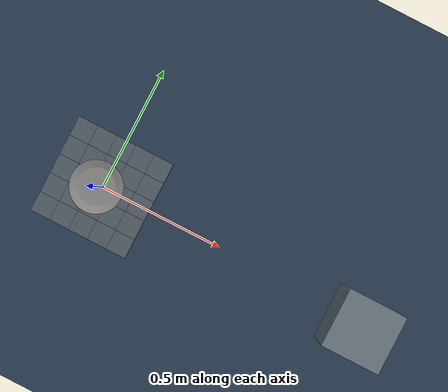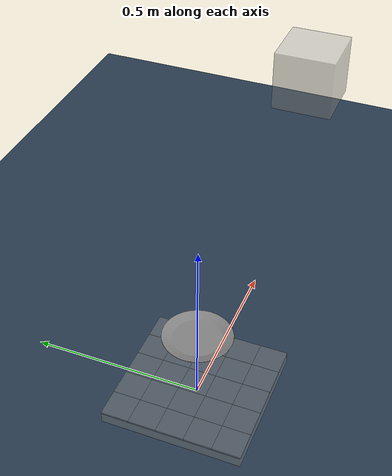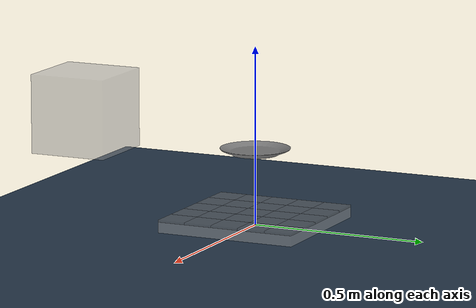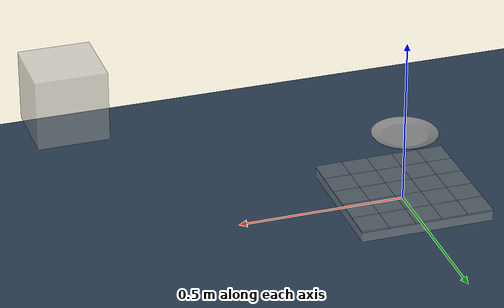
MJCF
<mujoco model="box_on_box">
  <compiler meshdir="meshes"/>
  <statistic extent="1.5" meansize=".05"/>
  <option timestep="0.001" jacobian="sparse" gravity="0 0 -9.81"/>
  <size nconmax="3000" njmax="4000"/>
  <visual>
    <rgba haze="0.15 0.25 0.35 1"/>
    <quality shadowsize="4096"/>
    <map stiffness="700" shadowscale="0.5" fogstart="10" fogend="15" zfar="40" haze="0.3"/>
    <scale forcewidth="0.001" />
  </visual>

  <asset>
    <texture type="skybox" builtin="gradient" rgb1="0.3 0.5 0.7" rgb2="0 0 0" width="512" height="512"/>
    <texture name="texplane" type="2d" builtin="checker" rgb1=".2 .3 .4" rgb2=".1 0.15 0.2"
      width="512" height="512" mark="cross" markrgb=".8 .8 .8"/>
    <material name="matplane" reflectance="0.3" texture="texplane" texrepeat="1 1" texuniform="true"/>
    <mesh file="plate_8in_col.stl" scale="1 1 1"/>
  </asset>

  <custom>
    <!-- All custom parameters related to contact surfaces have the prefix cs:: -->
    <text name="cs::HydroelasticContactRepresentation" data="kPolygon"/>
    <numeric name="cs::VisualizeSurfaces" data="1"/>
    <numeric name="cs::box1" data="0 1.0 0.1 0.3 0.3"/>
    <numeric name="cs::plate" data="0 1.0 0 0.3 0.3"/>
    <numeric name="cs::myrmex_foam_0_0" data="5e4 5.0 0 0.3 0.3"/>
    <numeric name="cs::myrmex_foam_0_1" data="5e4 5.0 0 0.3 0.3"/>
    <numeric name="cs::myrmex_foam_0_2" data="5e4 5.0 0 0.3 0.3"/>
    <numeric name="cs::myrmex_foam_0_3" data="5e4 5.0 0 0.3 0.3"/>
    <numeric name="cs::myrmex_foam_0_4" data="5e4 5.0 0 0.3 0.3"/>
    <numeric name="cs::myrmex_foam_1_0" data="5e4 5.0 0 0.3 0.3"/>
    <numeric name="cs::myrmex_foam_1_1" data="5e4 5.0 0 0.3 0.3"/>
    <numeric name="cs::myrmex_foam_1_2" data="5e4 5.0 0 0.3 0.3"/>
    <numeric name="cs::myrmex_foam_1_3" data="5e4 5.0 0 0.3 0.3"/>
    <numeric name="cs::myrmex_foam_1_4" data="5e4 5.0 0 0.3 0.3"/>
    <numeric name="cs::myrmex_foam_2_0" data="5e4 5.0 0 0.3 0.3"/>
    <numeric name="cs::myrmex_foam_2_1" data="5e4 5.0 0 0.3 0.3"/>
    <numeric name="cs::myrmex_foam_2_2" data="5e4 5.0 0 0.3 0.3"/>
    <numeric name="cs::myrmex_foam_2_3" data="5e4 5.0 0 0.3 0.3"/>
    <numeric name="cs::myrmex_foam_2_4" data="5e4 5.0 0 0.3 0.3"/>
    <numeric name="cs::myrmex_foam_3_0" data="5e4 5.0 0 0.3 0.3"/>
    <numeric name="cs::myrmex_foam_3_1" data="5e4 5.0 0 0.3 0.3"/>
    <numeric name="cs::myrmex_foam_3_2" data="5e4 5.0 0 0.3 0.3"/>
    <numeric name="cs::myrmex_foam_3_3" data="5e4 5.0 0 0.3 0.3"/>
    <numeric name="cs::myrmex_foam_3_4" data="5e4 5.0 0 0.3 0.3"/>
    <numeric name="cs::myrmex_foam_4_0" data="5e4 5.0 0 0.3 0.3"/>
    <numeric name="cs::myrmex_foam_4_1" data="5e4 5.0 0 0.3 0.3"/>
    <numeric name="cs::myrmex_foam_4_2" data="5e4 5.0 0 0.3 0.3"/>
    <numeric name="cs::myrmex_foam_4_3" data="5e4 5.0 0 0.3 0.3"/>
    <numeric name="cs::myrmex_foam_4_4" data="5e4 5.0 0 0.3 0.3"/>

  </custom>

  <worldbody>
    <light directional="true" diffuse=".4 .4 .4" specular="0.1 0.1 0.1" pos="0 0 5.0" dir="0 0 -1" castshadow="false"/>
    <light directional="true" diffuse=".6 .6 .6" specular="0.2 0.2 0.2" pos="0 0 4" dir="0 0 -1"/>
    <geom name="ground" type="plane" size="0 0 1" pos="0 0 0" quat="1 0 0 0" material="matplane" condim="1"/>
    <body name="body_plate" pos="0 0 0.2" >
      <inertial pos="0 0 0.00915" mass="0.375" diaginertia="0.000860 0.000860 0.00171"/>
      <freejoint name="plate_joint"/>
      <geom name="plate" type="mesh" mesh="plate_8in_col"/>
    </body>
    <body name="body_box1" pos="1 0 0.5">
      <freejoint/>
      <geom name="box1" type="box"  size="0.1 0.1 0.1" rgba="0.7 0.7 0.7 0.5"/>
    </body>
    <body name="body_myrmex" pos="0 0.0 0.0" >
      <freejoint/>
      <geom name="myrmex_base" type="box" pos="0 0 0.015" size="0.2 0.2 0.015" rgba="0.7 0.7 0.7 0.5"/>
      <geom name="myrmex_foam_0_0" type="box" pos="-0.16 -0.16 0.033" size="0.04 0.04 0.003" rgba="0.5 0.5 0.5 0.5"/>
      <geom name="myrmex_foam_0_1" type="box" pos="-0.16 -0.08 0.033" size="0.04 0.04 0.003" rgba="0.5 0.5 0.5 0.5"/>
      <geom name="myrmex_foam_0_2" type="box" pos="-0.16 0.0 0.033" size="0.04 0.04 0.003" rgba="0.5 0.5 0.5 0.5"/>
      <geom name="myrmex_foam_0_3" type="box" pos="-0.16 0.08 0.033" size="0.04 0.04 0.003" rgba="0.5 0.5 0.5 0.5"/>
      <geom name="myrmex_foam_0_4" type="box" pos="-0.16 0.16 0.033" size="0.04 0.04 0.003" rgba="0.5 0.5 0.5 0.5"/>
      <geom name="myrmex_foam_1_0" type="box" pos="-0.08 -0.16 0.033" size="0.04 0.04 0.003" rgba="0.5 0.5 0.5 0.5"/>
      <geom name="myrmex_foam_1_1" type="box" pos="-0.08 -0.08 0.033" size="0.04 0.04 0.003" rgba="0.5 0.5 0.5 0.5"/>
      <geom name="myrmex_foam_1_2" type="box" pos="-0.08 0.0 0.033" size="0.04 0.04 0.003" rgba="0.5 0.5 0.5 0.5"/>
      <geom name="myrmex_foam_1_3" type="box" pos="-0.08 0.08 0.033" size="0.04 0.04 0.003" rgba="0.5 0.5 0.5 0.5"/>
      <geom name="myrmex_foam_1_4" type="box" pos="-0.08 0.16 0.033" size="0.04 0.04 0.003" rgba="0.5 0.5 0.5 0.5"/>
      <geom name="myrmex_foam_2_0" type="box" pos="0.0 -0.16 0.033" size="0.04 0.04 0.003" rgba="0.5 0.5 0.5 0.5"/>
      <geom name="myrmex_foam_2_1" type="box" pos="0.0 -0.08 0.033" size="0.04 0.04 0.003" rgba="0.5 0.5 0.5 0.5"/>
      <geom name="myrmex_foam_2_2" type="box" pos="0.0 0.0 0.033" size="0.04 0.04 0.003" rgba="0.5 0.5 0.5 0.5"/>
      <geom name="myrmex_foam_2_3" type="box" pos="0.0 0.08 0.033" size="0.04 0.04 0.003" rgba="0.5 0.5 0.5 0.5"/>
      <geom name="myrmex_foam_2_4" type="box" pos="0.0 0.16 0.033" size="0.04 0.04 0.003" rgba="0.5 0.5 0.5 0.5"/>
      <geom name="myrmex_foam_3_0" type="box" pos="0.08 -0.16 0.033" size="0.04 0.04 0.003" rgba="0.5 0.5 0.5 0.5"/>
      <geom name="myrmex_foam_3_1" type="box" pos="0.08 -0.08 0.033" size="0.04 0.04 0.003" rgba="0.5 0.5 0.5 0.5"/>
      <geom name="myrmex_foam_3_2" type="box" pos="0.08 0.0 0.033" size="0.04 0.04 0.003" rgba="0.5 0.5 0.5 0.5"/>
      <geom name="myrmex_foam_3_3" type="box" pos="0.08 0.08 0.033" size="0.04 0.04 0.003" rgba="0.5 0.5 0.5 0.5"/>
      <geom name="myrmex_foam_3_4" type="box" pos="0.08 0.16 0.033" size="0.04 0.04 0.003" rgba="0.5 0.5 0.5 0.5"/>
      <geom name="myrmex_foam_4_0" type="box" pos="0.16 -0.16 0.033" size="0.04 0.04 0.003" rgba="0.5 0.5 0.5 0.5"/>
      <geom name="myrmex_foam_4_1" type="box" pos="0.16 -0.08 0.033" size="0.04 0.04 0.003" rgba="0.5 0.5 0.5 0.5"/>
      <geom name="myrmex_foam_4_2" type="box" pos="0.16 0.0 0.033" size="0.04 0.04 0.003" rgba="0.5 0.5 0.5 0.5"/>
      <geom name="myrmex_foam_4_3" type="box" pos="0.16 0.08 0.033" size="0.04 0.04 0.003" rgba="0.5 0.5 0.5 0.5"/>
      <geom name="myrmex_foam_4_4" type="box" pos="0.16 0.16 0.033" size="0.04 0.04 0.003" rgba="0.5 0.5 0.5 0.5"/>

    </body>
  </worldbody>

  <contact>
    <exclude body1="body_plate" body2="body_myrmex"/>
  </contact>
</mujoco>
